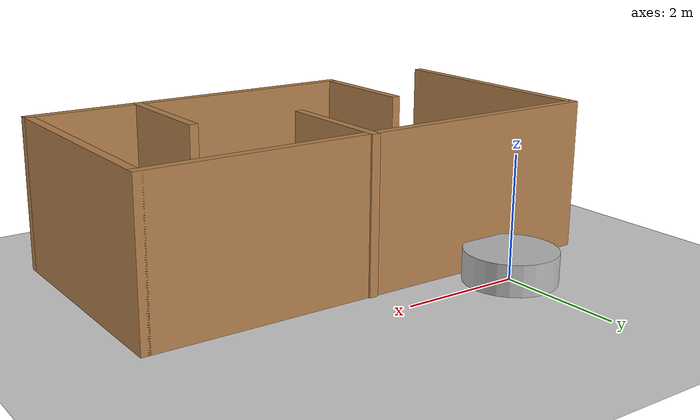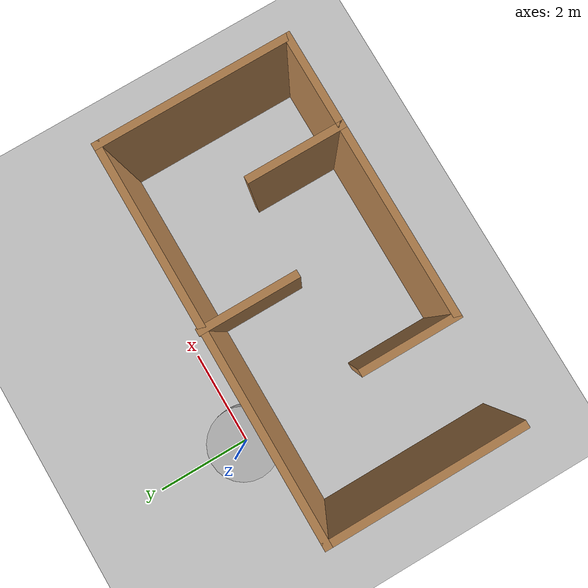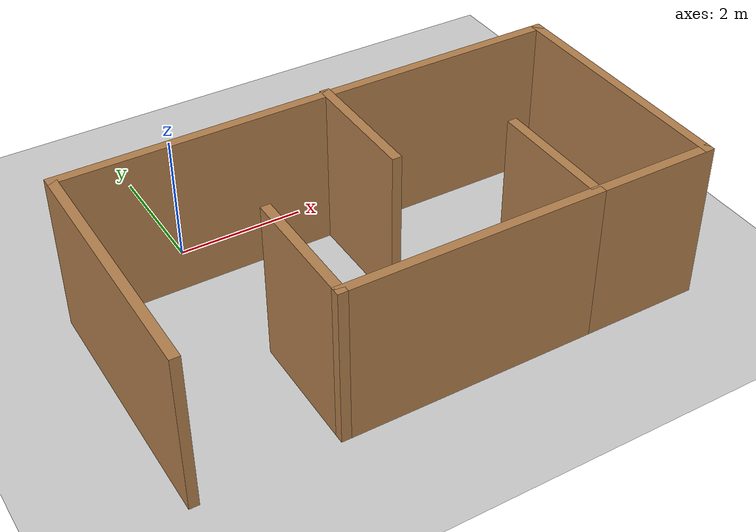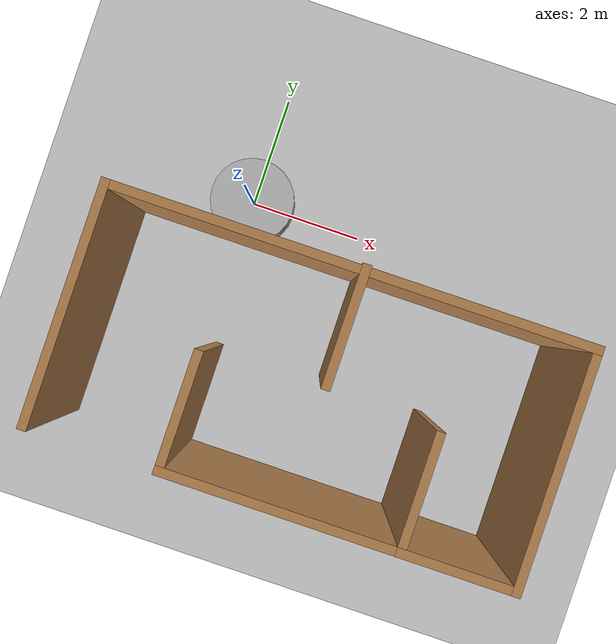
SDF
<sdf version='1.4'>
  <world name='default'>
    <!-- A global light source -->
    <include>
      <uri>model://sun</uri>
    </include>

    <!-- A ground plane -->
    <include>
      <uri>model://ground_plane</uri>
    </include>

    <physics type="ode">
      <real_time_update_rate>1000.0</real_time_update_rate>
      <max_step_size>0.001</max_step_size>
      <real_time_factor>1</real_time_factor>
      <ode>
        <solver>
          <type>quick</type>
          <iters>150</iters>
          <precon_iters>0</precon_iters>
          <sor>1.400000</sor>
          <use_dynamic_moi_rescaling>1</use_dynamic_moi_rescaling>
        </solver>
        <constraints>
          <cfm>0.00001</cfm>
          <erp>0.2</erp>
          <contact_max_correcting_vel>2000.000000</contact_max_correcting_vel>
          <contact_surface_layer>0.01000</contact_surface_layer>
        </constraints>
      </ode>
    </physics>

    <!-- Load model -->
    <include>
      <uri>model://turtlebot3_test</uri>
    </include>

    <model name="cylinder_1">
      <link name="link">
        <collision name="collision">
          <geometry>
            <cylinder>
              <radius>0.75</radius>
              <length>1.0</length>
            </cylinder>
          </geometry>
        </collision>
        <visual name="cylinder_1">
          <geometry>
            <cylinder>
              <radius>0.75</radius>
              <length>1.0</length>
            </cylinder>
          </geometry>
        </visual>
      </link>

      <plugin name="line_motion1" filename="libline_motion1.so"/>
    </model>

    <scene>
      <ambient>0.4 0.4 0.4 1</ambient>
      <background>0.7 0.7 0.7 1</background>
      <shadows>false</shadows>
    </scene>

    <gui fullscreen='0'>
      <camera name='user_camera'>
        <pose>0.0 0.0 17.0 0 1.5708 0</pose>
        <view_controller>orbit</view_controller>
      </camera>
    </gui>
  </world>
</sdf>

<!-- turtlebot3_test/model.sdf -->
<sdf version='1.6'>
  <model name='slam_test'>
    <pose frame=''>1.99193 -2.6158 0 0 -0 0</pose>
    <link name='Wall_11'>
      <collision name='Wall_11_Collision'>
        <geometry>
          <box>
            <size>2 0.15 2.5</size>
          </box>
        </geometry>
        <pose frame=''>0 0 1.25 0 -0 0</pose>
      </collision>
      <visual name='Wall_11_Visual'>
        <pose frame=''>0 0 1.25 0 -0 0</pose>
        <geometry>
          <box>
            <size>2 0.15 2.5</size>
          </box>
        </geometry>
        <material>
          <script>
            <uri>file://media/materials/scripts/gazebo.material</uri>
            <name>Gazebo/Wood</name>
          </script>
          <ambient>1 1 1 1</ambient>
        </material>
        <meta>
          <layer>0</layer>
        </meta>
      </visual>
      <pose frame=''>0.218396 1.01596 0 0 -0 -1.5708</pose>
    </link>
    <link name='Wall_2'>
      <collision name='Wall_2_Collision'>
        <geometry>
          <box>
            <size>4 0.15 2.5</size>
          </box>
        </geometry>
        <pose frame=''>0 0 1.25 0 -0 0</pose>
      </collision>
      <visual name='Wall_2_Visual'>
        <pose frame=''>0 0 1.25 0 -0 0</pose>
        <geometry>
          <box>
            <size>4 0.15 2.5</size>
          </box>
        </geometry>
        <material>
          <script>
            <uri>file://media/materials/scripts/gazebo.material</uri>
            <name>Gazebo/Wood</name>
          </script>
          <ambient>1 1 1 1</ambient>
        </material>
        <meta>
          <layer>0</layer>
        </meta>
      </visual>
      <pose frame=''>-3.925 -0.01596 0 0 -0 1.5708</pose>
    </link>
    <link name='Wall_3'>
      <collision name='Wall_3_Collision'>
        <geometry>
          <box>
            <size>8 0.15 2.5</size>
          </box>
        </geometry>
        <pose frame=''>0 0 1.25 0 -0 0</pose>
      </collision>
      <visual name='Wall_3_Visual'>
        <pose frame=''>0 0 1.25 0 -0 0</pose>
        <geometry>
          <box>
            <size>8 0.15 2.5</size>
          </box>
        </geometry>
        <material>
          <script>
            <uri>file://media/materials/scripts/gazebo.material</uri>
            <name>Gazebo/Wood</name>
          </script>
          <ambient>1 1 1 1</ambient>
        </material>
        <meta>
          <layer>0</layer>
        </meta>
      </visual>
      <pose frame=''>0 1.90904 0 0 -0 0</pose>
    </link>
    <link name='Wall_4'>
      <collision name='Wall_4_Collision'>
        <geometry>
          <box>
            <size>4 0.15 2.5</size>
          </box>
        </geometry>
        <pose frame=''>0 0 1.25 0 -0 0</pose>
      </collision>
      <visual name='Wall_4_Visual'>
        <pose frame=''>0 0 1.25 0 -0 0</pose>
        <geometry>
          <box>
            <size>4 0.15 2.5</size>
          </box>
        </geometry>
        <material>
          <script>
            <uri>file://media/materials/scripts/gazebo.material</uri>
            <name>Gazebo/Wood</name>
          </script>
          <ambient>1 1 1 1</ambient>
        </material>
        <meta>
          <layer>0</layer>
        </meta>
      </visual>
      <pose frame=''>3.925 -0.01596 0 0 -0 -1.5708</pose>
    </link>
    <link name='Wall_5'>
      <collision name='Wall_5_Collision'>
        <geometry>
          <box>
            <size>2 0.15 2.5</size>
          </box>
        </geometry>
        <pose frame=''>0 0 1.25 0 -0 0</pose>
      </collision>
      <visual name='Wall_5_Visual'>
        <pose frame=''>0 0 1.25 0 -0 0</pose>
        <geometry>
          <box>
            <size>2 0.15 2.5</size>
          </box>
        </geometry>
        <material>
          <script>
            <uri>file://media/materials/scripts/gazebo.material</uri>
            <name>Gazebo/Wood</name>
          </script>
          <ambient>1 1 1 1</ambient>
        </material>
        <meta>
          <layer>0</layer>
        </meta>
      </visual>
      <pose frame=''>3 -1.94096 0 0 -0 3.14159</pose>
    </link>
    <link name='Wall_6'>
      <collision name='Wall_6_Collision'>
        <geometry>
          <box>
            <size>2 0.15 2.5</size>
          </box>
        </geometry>
        <pose frame=''>0 0 1.25 0 -0 0</pose>
      </collision>
      <visual name='Wall_6_Visual'>
        <pose frame=''>0 0 1.25 0 -0 0</pose>
        <geometry>
          <box>
            <size>2 0.15 2.5</size>
          </box>
        </geometry>
        <material>
          <script>
            <uri>file://media/materials/scripts/gazebo.material</uri>
            <name>Gazebo/Wood</name>
          </script>
          <ambient>1 1 1 1</ambient>
        </material>
        <meta>
          <layer>0</layer>
        </meta>
      </visual>
      <pose frame=''>2.075 -1.01596 0 0 -0 1.5708</pose>
    </link>
    <link name='Wall_8'>
      <collision name='Wall_8_Collision'>
        <geometry>
          <box>
            <size>4 0.15 2.5</size>
          </box>
        </geometry>
        <pose frame=''>0 0 1.25 0 -0 0</pose>
      </collision>
      <visual name='Wall_8_Visual'>
        <pose frame=''>0 0 1.25 0 -0 0</pose>
        <geometry>
          <box>
            <size>4 0.15 2.5</size>
          </box>
        </geometry>
        <material>
          <script>
            <uri>file://media/materials/scripts/gazebo.material</uri>
            <name>Gazebo/Wood</name>
          </script>
          <ambient>1 1 1 1</ambient>
        </material>
        <meta>
          <layer>0</layer>
        </meta>
      </visual>
      <pose frame=''>0.15 -1.94096 0 0 -0 3.14159</pose>
    </link>
    <link name='Wall_9'>
      <collision name='Wall_9_Collision'>
        <geometry>
          <box>
            <size>2 0.15 2.5</size>
          </box>
        </geometry>
        <pose frame=''>0 0 1.25 0 -0 0</pose>
      </collision>
      <visual name='Wall_9_Visual'>
        <pose frame=''>0 0 1.25 0 -0 0</pose>
        <geometry>
          <box>
            <size>2 0.15 2.5</size>
          </box>
        </geometry>
        <material>
          <script>
            <uri>file://media/materials/scripts/gazebo.material</uri>
            <name>Gazebo/Wood</name>
          </script>
          <ambient>1 1 1 1</ambient>
        </material>
        <meta>
          <layer>0</layer>
        </meta>
      </visual>
      <pose frame=''>-1.775 -1.01596 0 0 -0 1.5708</pose>
    </link>
    <static>1</static>
  </model>
</sdf>
